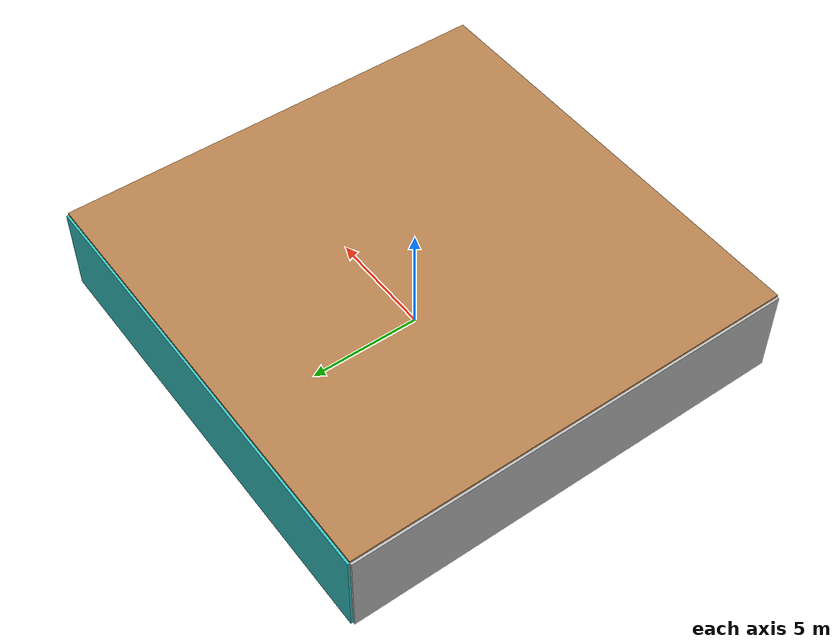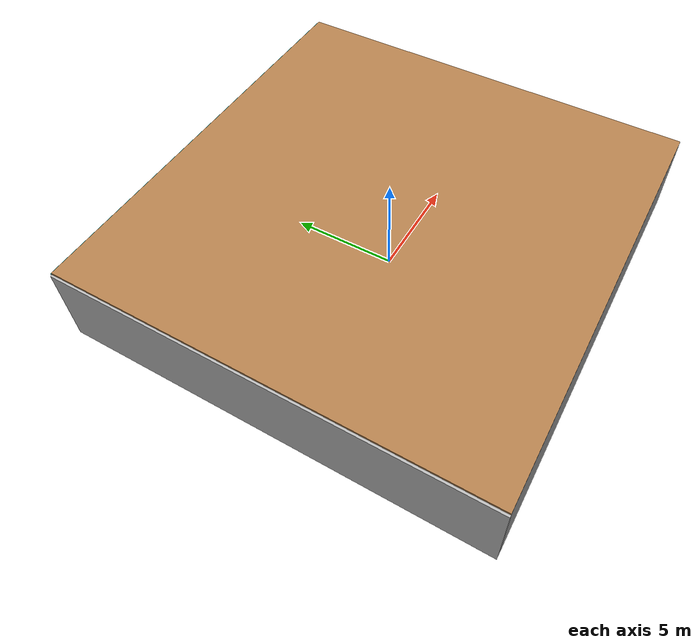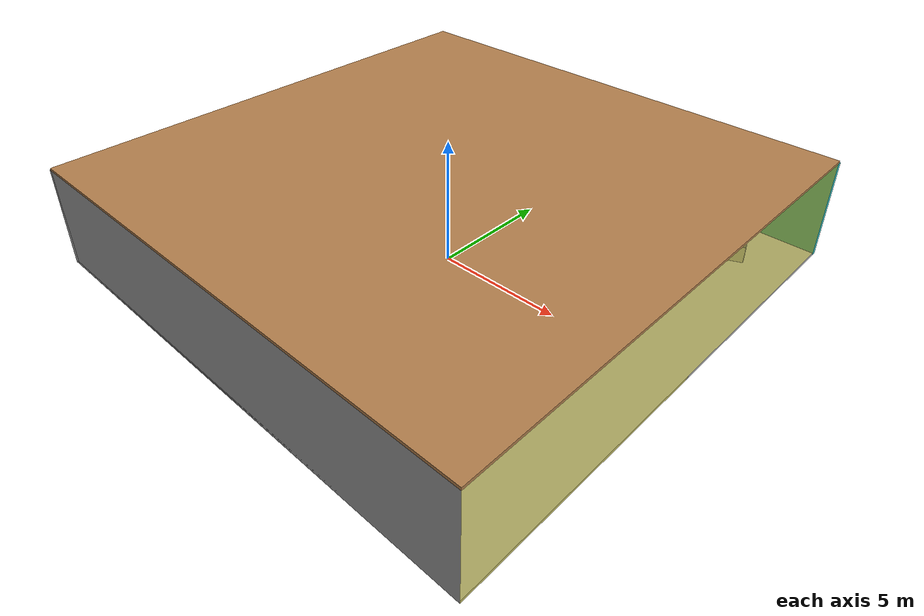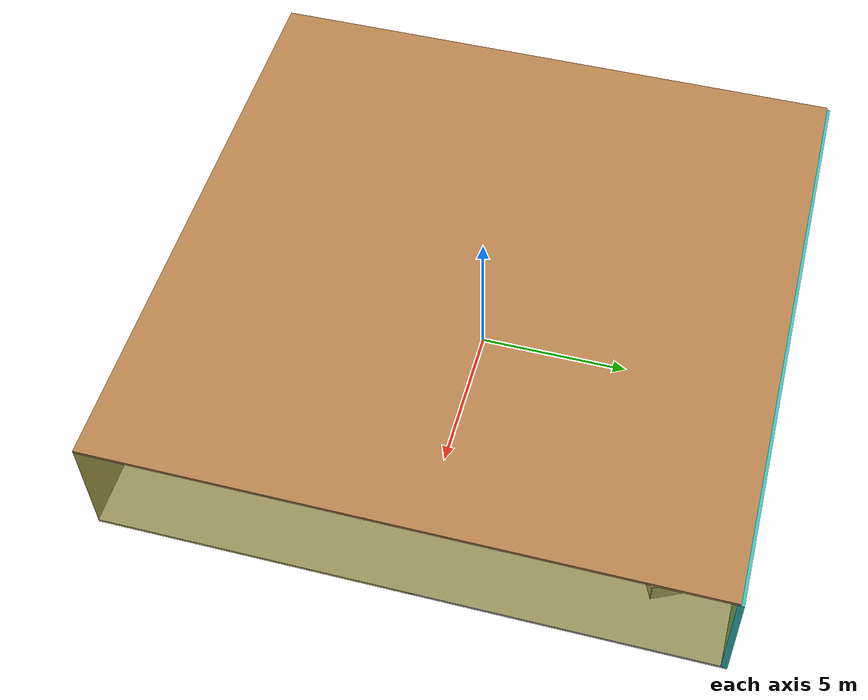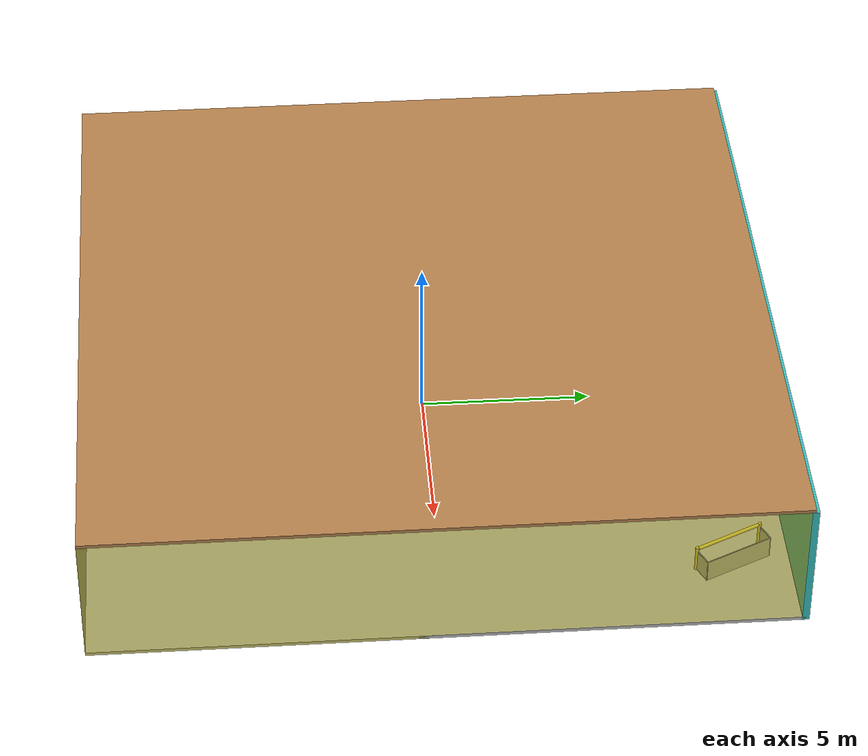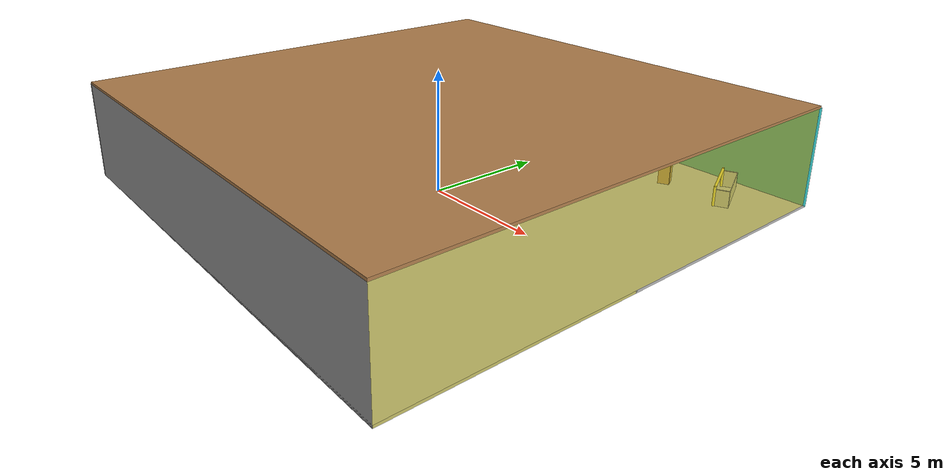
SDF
<sdf version="1.4">
 <world name="default">
  <physics type="ode">
   <max_step_size>0.001</max_step_size>
   <real_time_factor>1</real_time_factor>
   <real_time_update_rate>1000</real_time_update_rate>
   <gravity>0 0 -9.8</gravity>
  </physics>
  <scene><ambient>0.4 0.4 0.4 1</ambient><background>0.7 0.7 0.7 1</background><shadows>1</shadows></scene>
  <model name="Surrounding">
   <static>1</static>
   <link name="Ceiling">
    <collision name="Ceiling_Collision"><geometry><box><size>20 20 0.1</size></box></geometry></collision>
    <visual name="Ceiling_Visual">
     <geometry><box><size>20 20 0.1</size></box></geometry>
     <material>
      <script><uri>file://media/materials/scripts/gazebo.material</uri><name>Gazebo/WoodFloor</name></script>
     </material>
    </visual>
    <pose>0 0 4.05 0 0 0</pose>
   </link>
   <link name="Wall_South">
    <collision name="Wall_South_Collision">
     <geometry><box><size>20 0 4</size></box></geometry>
     <pose>0 0 2 0 -0 0</pose>
    </collision>
    <visual name="Wall_South_Visual">
     <pose>0 0 2 0 -0 0</pose>
     <geometry><box><size>20 0 4</size></box></geometry>
     <material>
      <script><uri>file://media/materials/scripts/gazebo.material</uri><name>Gazebo/Grey</name></script>
     </material>
    </visual>
    <velocity_decay><linear>0</linear><angular>0</angular></velocity_decay>
    <pose>0 -10 0 0 -0 0</pose>
   </link>
   <link name="Wall_East">
    <collision name="Wall_21_Collision">
     <geometry><box><size>20 0 4</size></box></geometry>
     <pose>0 0 2 0 -0 0</pose>
    </collision>
    <visual name="Wall_21_Visual">
     <pose>0 0 2 0 -0 0</pose>
     <geometry><box><size>20 0 4</size></box></geometry>
     <material>
      <script>
       <uri>file://media/materials/scripts/gazebo.material</uri>
       <name>Gazebo/YellowTransparent</name>
      </script>
     </material>
    </visual>
    <velocity_decay><linear>0</linear><angular>0</angular></velocity_decay>
    <pose>10 0 0 0 -0 1.5708</pose>
   </link>
   <link name="Wall_North">
    <collision name="Wall_22_Collision">
     <geometry><box><size>20 0.2 4</size></box></geometry>
     <pose>0 0 2 0 -0 0</pose>
    </collision>
    <visual name="Wall_22_Visual">
     <pose>0 0 2 0 -0 0</pose>
     <geometry><box><size>20 0.2 4</size></box></geometry>
     <material>
      <script><uri>file://media/materials/scripts/gazebo.material</uri><name>Gazebo/Turquoise</name></script>
     </material>
    </visual>
    <velocity_decay><linear>0</linear><angular>0</angular></velocity_decay>
    <pose>0 10 0 0 -0 0</pose>
   </link>
   <link name="Wall_West">
    <collision name="Wall_23_Collision">
     <geometry><box><size>20 0.2 4</size></box></geometry>
     <pose>0 0 2 0 -0 0</pose>
    </collision>
    <visual name="Wall_23_Visual">
     <pose>0 0 2 0 -0 0</pose>
     <geometry><box><size>20 0.2 4</size></box></geometry>
     <material>
      <script><uri>file://media/materials/scripts/gazebo.material</uri><name>Gazebo/Pioneer2Body</name></script>
     </material>
    </visual>
    <velocity_decay><linear>0</linear><angular>0</angular></velocity_decay>
    <pose>-10 0 0 0 0 -1.5708</pose>
   </link>
   <link name="Ground_link">
    <collision name="collision">
     <pose>0 0 .05 0 -0 0</pose>
     <geometry><box><size>20 20 0.1</size></box></geometry>
    </collision>
    <visual name="visual">
     <pose>0 0 .05 0 -0 0</pose>
     <geometry><box><size>20 20 0.1</size></box></geometry>
     <material>
      <script><uri>file://media/materials/scripts/gazebo.material</uri><name>Gazebo/JointAnchor</name></script>
     </material>
    </visual>
   </link>
   <static>1</static>
  </model>
  <spherical_coordinates>
   <surface_model>EARTH_WGS84</surface_model>
   <latitude_deg>0</latitude_deg>
   <longitude_deg>0</longitude_deg>
   <elevation>0</elevation>
   <heading_deg>0</heading_deg>
  </spherical_coordinates>
  <light name="lightball_0" type="diffuse">
   <diffuse>0.8 0.8 0.8 1</diffuse>
   <specular>0.2 0.2 0.2 1</specular>
   <attenuation>
    <range>100</range>
    <constant>0.7</constant>
    <linear>0.01</linear>
    <quadratic>0.001</quadratic>
   </attenuation>
   <direction>-0.5 0.1 -0.9</direction>
   <pose>7.13703130034 -3.03308335034 3.73994720837 0 0 0</pose>
  </light>
  <light name="lightball_1" type="diffuse">
   <diffuse>0.8 0.8 0.8 1</diffuse>
   <specular>0.2 0.2 0.2 1</specular>
   <attenuation>
    <range>100</range>
    <constant>0.7</constant>
    <linear>0.01</linear>
    <quadratic>0.001</quadratic>
   </attenuation>
   <direction>-0.5 0.1 -0.9</direction>
   <pose>-3.24575924288 4.67406717753 1.58796956942 0 0 0</pose>
  </light>
  <light name="lightball_2" type="diffuse">
   <diffuse>0.8 0.8 0.8 1</diffuse>
   <specular>0.2 0.2 0.2 1</specular>
   <attenuation>
    <range>100</range>
    <constant>0.7</constant>
    <linear>0.01</linear>
    <quadratic>0.001</quadratic>
   </attenuation>
   <direction>-0.5 0.1 -0.9</direction>
   <pose>1.98049577392 -6.9334960862 1.83651689462 0 0 0</pose>
  </light>
  <light name="lightball_3" type="diffuse">
   <diffuse>0.8 0.8 0.8 1</diffuse>
   <specular>0.2 0.2 0.2 1</specular>
   <attenuation>
    <range>100</range>
    <constant>0.7</constant>
    <linear>0.01</linear>
    <quadratic>0.001</quadratic>
   </attenuation>
   <direction>-0.5 0.1 -0.9</direction>
   <pose>9.01340008315 5.99553645684 3.75260222825 0 0 0</pose>
  </light>
  <light name="lightball_4" type="diffuse">
   <diffuse>0.8 0.8 0.8 1</diffuse>
   <specular>0.2 0.2 0.2 1</specular>
   <attenuation>
    <range>100</range>
    <constant>0.7</constant>
    <linear>0.01</linear>
    <quadratic>0.001</quadratic>
   </attenuation>
   <direction>-0.5 0.1 -0.9</direction>
   <pose>-1.50068467351 6.73440745963 1.83831785807 0 0 0</pose>
  </light>
  <light name="lightball_5" type="diffuse">
   <diffuse>0.8 0.8 0.8 1</diffuse>
   <specular>0.2 0.2 0.2 1</specular>
   <attenuation>
    <range>100</range>
    <constant>0.7</constant>
    <linear>0.01</linear>
    <quadratic>0.001</quadratic>
   </attenuation>
   <direction>-0.5 0.1 -0.9</direction>
   <pose>-7.18324896214 -2.81443824846 2.60202680788 0 0 0</pose>
  </light>
  <light name="lightball_6" type="diffuse">
   <diffuse>0.8 0.8 0.8 1</diffuse>
   <specular>0.2 0.2 0.2 1</specular>
   <attenuation>
    <range>100</range>
    <constant>0.7</constant>
    <linear>0.01</linear>
    <quadratic>0.001</quadratic>
   </attenuation>
   <direction>-0.5 0.1 -0.9</direction>
   <pose>-7.63215979456 1.20412554138 3.0754025169 0 0 0</pose>
  </light>
  <include><uri>model://cabinet</uri><pose>-4.85727754931 1.31965795595 0 0 0 3.1214545974</pose></include>
  <include>
   <uri>model://textured_shapes</uri>
   <pose>-5.16094025381 4.38624162469 0 0 0 1.25673462348</pose>
  </include>
  <include>
   <uri>model://robocup_3Dsim_goal</uri>
   <pose>-1.31194457812 -5.17197358258 0 0 0 1.67288746468</pose>
  </include>
  <include>
   <uri>model://construction_cone</uri>
   <pose>-1.38836642684 1.12394052269 0 0 0 0.393991515594</pose>
  </include>
  <include>
   <uri>model://construction_cone</uri>
   <pose>2.28479154565 -8.14768854808 0 0 0 0.965498701372</pose>
  </include>
  <include><uri>model://cabinet</uri><pose>5.22891716443 7.67543288676 0 0 0 0.4531618669</pose></include>
  <include>
   <uri>model://robocup_3Dsim_goal</uri>
   <pose>7.38979779835 8.16098005376 0 0 0 0.434887973402</pose>
  </include>
 </world>
</sdf>

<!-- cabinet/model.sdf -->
<sdf version="1.5">
  <model name="cabinet">
    <static>true</static>
    <link name="cabinet_bottom_plate">
      <inertial>
        <pose>0 0 -1 0 0 0</pose>
        <inertia>
          <ixx>2.050000</ixx>
          <ixy>0</ixy>
          <ixz>0</ixz>
          <iyy>2.050000</iyy>
          <iyz>0</iyz>
          <izz>2.050000</izz>
        </inertia>
        <mass>25.000000</mass>
      </inertial>
      <collision name="cabinet_bottom_plate_geom">
        <pose>0 0 0.010000 0 0 0</pose>
        <geometry>
          <box>
            <size>0.450000 0.450000 0.020000</size>
          </box>
        </geometry>
      </collision>
      <visual name="cabinet_bottom_plate_geom_visual">
        <pose>0 0 0.010000 0 0 0</pose>
        <geometry>
          <box>
            <size>0.450000 0.450000 0.020000</size>
          </box>
        </geometry>
        <material>
          <script>
            <uri>model://media/materials/scripts/gazebo.material</uri>
            <name>Gazebo/Wood</name>
          </script>
        </material>
      </visual>
      <collision name="cabinet_bottom_plate_geom_cabinet_back_plate">
        <pose>0.235000 0 0.510000 0 0 0</pose>
        <geometry>
          <box>
            <size>0.020000 0.450000 1.020000</size>
          </box>
        </geometry>
      </collision>
      <visual name="cabinet_bottom_plate_geom_cabinet_back_plate_visual">
        <pose>0.235000 0 0.510000 0 0 0</pose>
        <geometry>
          <box>
            <size>0.020000 0.450000 1.020000</size>
          </box>
        </geometry>
        <material>
          <script>
            <uri>model://media/materials/scripts/gazebo.material</uri>
            <name>Gazebo/Wood</name>
          </script>
        </material>
      </visual>
      <collision name="cabinet_bottom_plate_geom_cabinet_left_plate">
        <pose>0 0.235000 0.510000 0 0 0</pose>
        <geometry>
          <box>
            <size>0.450000 0.020000 1.020000</size>
          </box>
        </geometry>
      </collision>
      <visual name="cabinet_bottom_plate_geom_cabinet_left_plate_visual">
        <pose>0 0.235000 0.510000 0 0 0</pose>
        <geometry>
          <box>
            <size>0.450000 0.020000 1.020000</size>
          </box>
        </geometry>
        <material>
          <script>
            <uri>model://media/materials/scripts/gazebo.material</uri>
            <name>Gazebo/Wood</name>
          </script>
        </material>
      </visual>
      <collision name="cabinet_bottom_plate_geom_cabinet_middle_plate">
        <pose>0 0 0.510000 0 0 0</pose>
        <geometry>
          <box>
            <size>0.450000 0.450000 0.020000</size>
          </box>
        </geometry>
      </collision>
      <visual name="cabinet_bottom_plate_geom_cabinet_middle_plate_visual">
        <pose>0 0 0.510000 0 0 0</pose>
        <geometry>
          <box>
            <size>0.450000 0.450000 0.020000</size>
          </box>
        </geometry>
        <material>
          <script>
            <uri>model://media/materials/scripts/gazebo.material</uri>
            <name>Gazebo/Wood</name>
          </script>
        </material>
      </visual>
      <collision name="cabinet_bottom_plate_geom_cabinet_right_plate">
        <pose>0 -0.235000 0.510000 0 0 0</pose>
        <geometry>
          <box>
            <size>0.450000 0.020000 1.020000</size>
          </box>
        </geometry>
      </collision>
      <visual name="cabinet_bottom_plate_geom_cabinet_right_plate_visual">
        <pose>0 -0.235000 0.510000 0 0 0</pose>
        <geometry>
          <box>
            <size>0.450000 0.020000 1.020000</size>
          </box>
        </geometry>
        <material>
          <script>
            <uri>model://media/materials/scripts/gazebo.material</uri>
            <name>Gazebo/Wood</name>
          </script>
        </material>
      </visual>
      <collision name="cabinet_bottom_plate_geom_cabinet_top_plate">
        <pose>0 0 1.010000 0 0 0</pose>
        <geometry>
          <box>
            <size>0.450000 0.450000 0.020000</size>
          </box>
        </geometry>
      </collision>
      <visual name="cabinet_bottom_plate_geom_cabinet_top_plate_visual">
        <pose>0 0 1.010000 0 0 0</pose>
        <geometry>
          <box>
            <size>0.450000 0.450000 0.020000</size>
          </box>
        </geometry>
        <material>
          <script>
            <uri>model://media/materials/scripts/gazebo.material</uri>
            <name>Gazebo/Wood</name>
          </script>
        </material>
      </visual>
    </link>
  </model>
</sdf>

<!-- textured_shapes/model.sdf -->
<sdf version="1.6">
  <model name="textured_shapes">
    <pose>0 0 0.5 0 0 0</pose>
    <link name="box">
      <pose>0 -1.5 0 0 0 0</pose>
      <collision name="collision">
        <geometry>
          <box>
            <size>1 1 1</size>
          </box>
        </geometry>
      </collision>
      <visual name="visual">
        <geometry>
          <box>
            <size>1 1 1</size>
          </box>
        </geometry>
        <material>
          <script>
            <uri>model://../model_source/models/textured_shapes/materials/scripts</uri>
            <uri>model://../model_source/models/textured_shapes/materials/textures</uri>
            <name>TexturedShape/Squares</name>
          </script>
        </material>
      </visual>
    </link>
    <link name="sphere">
      <collision name="collision">
        <geometry>
          <sphere>
            <radius>0.5</radius>
          </sphere>
        </geometry>
      </collision>
      <visual name="visual">
        <geometry>
          <sphere>
            <radius>0.5</radius>
          </sphere>
        </geometry>
        <material>
          <script>
            <uri>model://../model_source/models/textured_shapes/materials/scripts</uri>
            <uri>model://../model_source/models/textured_shapes/materials/textures</uri>
            <name>TexturedShape/Squares</name>
          </script>
        </material>
      </visual>
    </link>
    <link name="cylinder">
      <pose>0 1.5 0 0 0 0</pose>
      <collision name="collision">
        <geometry>
          <cylinder>
            <radius>0.5</radius>
            <length>1</length>
          </cylinder>
        </geometry>
      </collision>
      <visual name="visual">
        <geometry>
          <cylinder>
            <radius>0.5</radius>
            <length>1</length>
          </cylinder>
        </geometry>
        <material>
          <script>
            <uri>model://../model_source/models/textured_shapes/materials/scripts</uri>
            <uri>model://../model_source/models/textured_shapes/materials/textures</uri>
            <name>TexturedShape/Squares</name>
          </script>
        </material>
      </visual>
    </link>
  </model>
</sdf>

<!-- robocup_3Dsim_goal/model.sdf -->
<sdf version="1.5">
  <model name="robocup_3d_goal">
    <static>true</static>
    <link name="left_post">
      <pose>0 1.05 0.45 0 0 0</pose>
      <collision name="collision">
        <geometry>
          <cylinder>
            <radius>0.05</radius>
            <length>0.9</length>
          </cylinder>
        </geometry>
      </collision>
      <visual name="visual">
        <geometry>
          <cylinder>
            <radius>0.05</radius>
            <length>0.9</length>
          </cylinder>
        </geometry>
        <material>
          <script>
            <uri>file://media/materials/scripts/gazebo.material</uri>
            <name>Gazebo/ZincYellow</name>
          </script>
        </material>
      </visual>
    </link>
    <link name="left_support_horiz_lower">
      <pose>0.30 1.05 0.01 0 0 0</pose>
      <collision name="collision">
        <geometry>
          <box>
            <size>0.50 0.02 0.02</size>
          </box>
        </geometry>
      </collision>
      <visual name="visual">
        <geometry>
          <box>
            <size>0.50 0.02 0.02</size>
          </box>
        </geometry>
        <material>
          <script>
            <uri>file://media/materials/scripts/gazebo.material</uri>
            <name>Gazebo/White</name>
          </script>
        </material>
      </visual>
    </link>
    <link name="left_support_horiz_upper">
      <pose>0.30 1.05 0.79 0 0 0</pose>
      <collision name="collision">
        <geometry>
          <box>
            <size>0.50 0.02 0.02</size>
          </box>
        </geometry>
      </collision>
      <visual name="visual">
        <geometry>
          <box>
            <size>0.50 0.02 0.02</size>
          </box>
        </geometry>
        <material>
          <script>
            <uri>file://media/materials/scripts/gazebo.material</uri>
            <name>Gazebo/White</name>
          </script>
        </material>
      </visual>
    </link>
    <link name="left_support_vertical">
      <pose>0.56 1.05 0.4 0 1.5708 0</pose>
      <collision name="collision">
        <geometry>
          <box>
            <size>0.80 0.02 0.02</size>
          </box>
        </geometry>
      </collision>
      <visual name="visual">
        <geometry>
          <box>
            <size>0.80 0.02 0.02</size>
          </box>
        </geometry>
        <material>
          <script>
            <uri>file://media/materials/scripts/gazebo.material</uri>
            <name>Gazebo/White</name>
          </script>
        </material>
      </visual>
    </link>
    <link name="right_support_horiz_lower">
      <pose>0.30 -1.05 0.01 0 0 0</pose>
      <collision name="collision">
        <geometry>
          <box>
            <size>0.50 0.02 0.02</size>
          </box>
        </geometry>
      </collision>
      <visual name="visual">
        <geometry>
          <box>
            <size>0.50 0.02 0.02</size>
          </box>
        </geometry>
        <material>
          <script>
            <uri>file://media/materials/scripts/gazebo.material</uri>
            <name>Gazebo/White</name>
          </script>
        </material>
      </visual>
    </link>
    <link name="right_support_horiz_upper">
      <pose>0.30 -1.05 0.79 0 0 0</pose>
      <collision name="collision">
        <geometry>
          <box>
            <size>0.50 0.02 0.02</size>
          </box>
        </geometry>
      </collision>
      <visual name="visual">
        <geometry>
          <box>
            <size>0.50 0.02 0.02</size>
          </box>
        </geometry>
        <material>
          <script>
            <uri>file://media/materials/scripts/gazebo.material</uri>
            <name>Gazebo/White</name>
          </script>
        </material>
      </visual>
    </link>
    <link name="right_support_vertical">
      <pose>0.56 -1.05 0.4 0 1.5708 0</pose>
      <collision name="collision">
        <geometry>
          <box>
            <size>0.80 0.02 0.02</size>
          </box>
        </geometry>
      </collision>
      <visual name="visual">
        <geometry>
          <box>
            <size>0.80 0.02 0.02</size>
          </box>
        </geometry>
        <material>
          <script>
            <uri>file://media/materials/scripts/gazebo.material</uri>
            <name>Gazebo/White</name>
          </script>
        </material>
      </visual>
    </link>
    <link name="center_support_horiz_lower">
      <pose>0.56 0 0.01 0 1.5708 0</pose>
      <collision name="collision">
        <geometry>
          <box>
            <size>0.02 2.08 0.02</size>
          </box>
        </geometry>
      </collision>
      <visual name="visual">
        <geometry>
          <box>
            <size>0.02 2.08 0.02</size>
          </box>
        </geometry>
        <material>
          <script>
            <uri>file://media/materials/scripts/gazebo.material</uri>
            <name>Gazebo/White</name>
          </script>
        </material>
      </visual>
    </link>
    <link name="center_support_horiz_upper">
      <pose>0.56 0 0.79 0 1.5708 0</pose>
      <collision name="collision">
        <geometry>
          <box>
            <size>0.02 2.08 0.02</size>
          </box>
        </geometry>
      </collision>
      <visual name="visual">
        <geometry>
          <box>
            <size>0.02 2.08 0.02</size>
          </box>
        </geometry>
        <material>
          <script>
            <uri>file://media/materials/scripts/gazebo.material</uri>
            <name>Gazebo/White</name>
          </script>
        </material>
      </visual>
    </link>
    <link name="right_post">
      <pose>0 -1.05 0.45 0 0 0</pose>
      <collision name="collision">
        <geometry>
          <cylinder>
            <radius>0.05</radius>
            <length>0.9</length>
          </cylinder>
        </geometry>
      </collision>
      <visual name="visual">
        <geometry>
          <cylinder>
            <radius>0.05</radius>
            <length>0.9</length>
          </cylinder>
        </geometry>
        <material>
          <script>
            <uri>file://media/materials/scripts/gazebo.material</uri>
            <name>Gazebo/ZincYellow</name>
          </script>
        </material>
      </visual>
    </link>
    <link name="crossbar">
      <pose>0 0 0.85 1.57 1.57 0</pose>
      <collision name="collision">
        <geometry>
          <cylinder>
            <radius>0.05</radius>
            <length>2.0</length>
          </cylinder>
        </geometry>
      </collision>
      <visual name="visual">
        <geometry>
          <cylinder>
            <radius>0.05</radius>
            <length>2.0</length>
          </cylinder>
        </geometry>
        <material>
          <script>
            <uri>file://media/materials/scripts/gazebo.material</uri>
            <name>Gazebo/ZincYellow</name>
          </script>
        </material>
      </visual>
    </link>
    <link name="center_net">
      <pose>0.56 0 0.40 0 0 0</pose>
      <collision name="collision">
        <geometry>
          <box>
            <size>0.01 2.1 0.80</size>
          </box>
        </geometry>
      </collision>
      <visual name="visual">
        <geometry>
          <box>
            <size>0.01 2.1 0.80</size>
          </box>
        </geometry>
        <material>
          <script>
            <uri>model://../model_source/models/robocup09_spl_field/materials/scripts/</uri>
            <uri>model://../model_source/models/robocup09_spl_field/materials/textures/</uri>
            <name>RoboCup/Net</name>
          </script>
        </material>
      </visual>
    </link>
    <link name="left_net">
      <pose>0.30 1.05 0.40 0 0 0</pose>
      <collision name="collision">
        <geometry>
          <box>
            <size>0.50 0.01 0.76</size>
          </box>
        </geometry>
      </collision>
      <visual name="visual">
        <geometry>
          <box>
            <size>0.50 0.01 0.76</size>
          </box>
        </geometry>
        <material>
          <script>
            <uri>model://../model_source/models/robocup09_spl_field/materials/scripts/</uri>
            <uri>model://../model_source/models/robocup09_spl_field/materials/textures/</uri>
            <name>RoboCup/Net</name>
          </script>
        </material>
      </visual>
    </link>
    <link name="right_net">
      <pose>0.30 -1.05 0.40 0 0 0</pose>
      <collision name="collision">
        <geometry>
          <box>
            <size>0.50 0.01 0.76</size>
          </box>
        </geometry>
      </collision>
      <visual name="visual">
        <geometry>
          <box>
            <size>0.50 0.01 0.76</size>
          </box>
        </geometry>
        <material>
          <script>
            <uri>model://../model_source/models/robocup09_spl_field/materials/scripts/</uri>
            <uri>model://../model_source/models/robocup09_spl_field/materials/textures/</uri>
            <name>RoboCup/Net</name>
          </script>
        </material>
      </visual>
    </link>
  </model>
</sdf>

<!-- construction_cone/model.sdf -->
<sdf version="1.5">
  <model name="Construction Cone">
    <link name="link">
      <collision name="collision">
        <geometry>
          <mesh>
            <scale>10 10 10</scale>
            <uri>file://isr-testbed/construction_cone/meshes/construction_cone.dae</uri>
          </mesh>
        </geometry>
      </collision>
      <visual name="visual">
        <geometry>
          <mesh>
            <scale>10 10 10</scale>
            <uri>file://isr-testbed/construction_cone/meshes/construction_cone.dae</uri>
          </mesh>
        </geometry>
      </visual>
    </link>
  </model>
</sdf>
